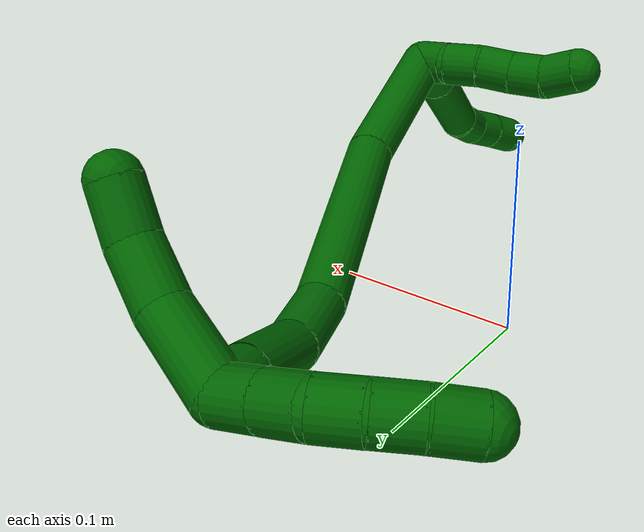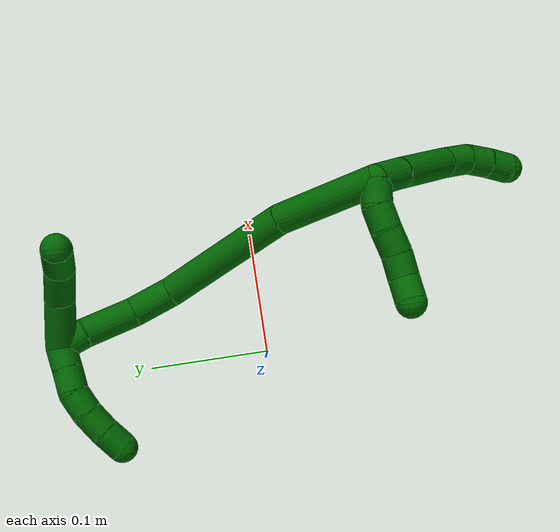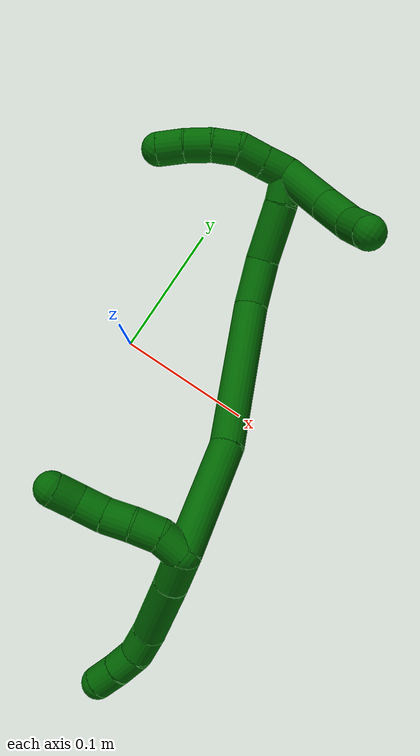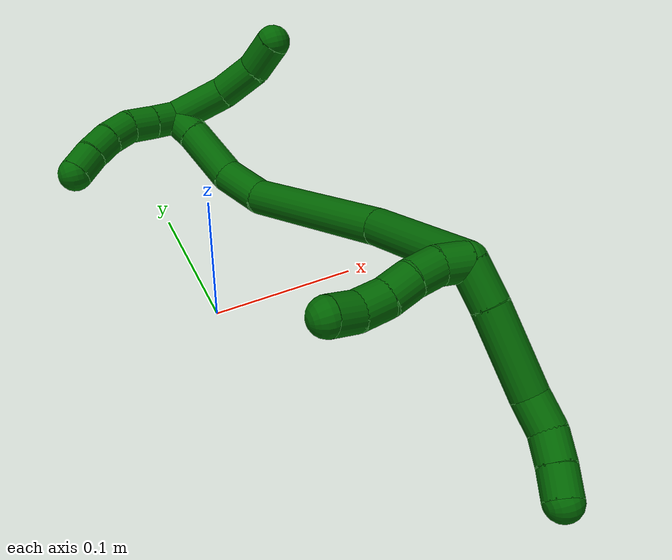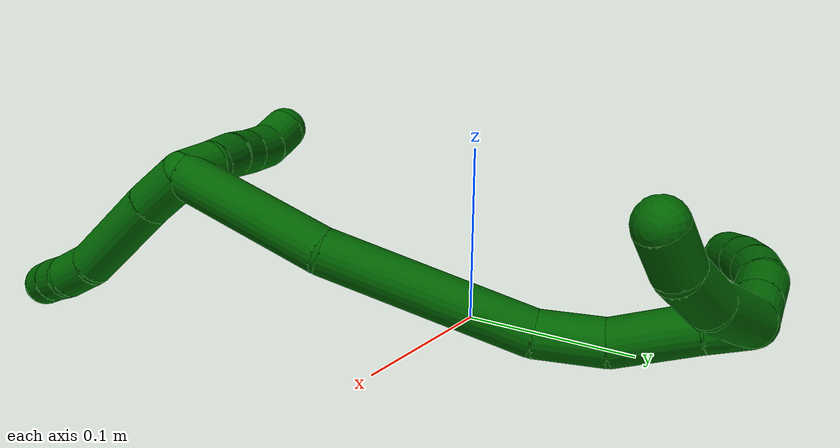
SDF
<sdf version="1.7">
 <world name="default">
  <model name="6">
   <static>0</static>
   <link name="6">
    <collision name="collision-cylinder-e_1_2_8">
     <pose>0.013653 -0.004264 0.002286 1.07871 1.23027 0.800234</pose>
     <geometry><cylinder><radius>0.0125</radius><length>0.02897</length></cylinder></geometry>
     <surface>
      <friction><ode><mu>1.16</mu><mu2>1.16</mu2><slip1>0</slip1><slip2>0</slip2></ode></friction>
      <contact><ode><kp>1e+06</kp><kd>1</kd><max_vel>0</max_vel><min_depth>0.001</min_depth></ode></contact>
     </surface>
    </collision>
    <visual name="visual-cylinder-e_1_2_8">
     <pose>0.013653 -0.004264 0.002286 1.07871 1.23027 0.800234</pose>
     <geometry><cylinder><radius>0.0125</radius><length>0.02897</length></cylinder></geometry>
     <material><ambient>0 0.392157 0.003922 1</ambient></material>
    </visual>
    <collision name="collision-cylinder-e_2_8_9">
     <pose>0.055135 -0.015543 0.008346 1.07715 1.29199 0.84646</pose>
     <geometry><cylinder><radius>0.0125</radius><length>0.057894</length></cylinder></geometry>
     <surface>
      <friction><ode><mu>1.16</mu><mu2>1.16</mu2><slip1>0</slip1><slip2>0</slip2></ode></friction>
      <contact><ode><kp>1e+06</kp><kd>1</kd><max_vel>0</max_vel><min_depth>0.001</min_depth></ode></contact>
     </surface>
    </collision>
    <visual name="visual-cylinder-e_2_8_9">
     <pose>0.055135 -0.015543 0.008346 1.07715 1.29199 0.84646</pose>
     <geometry><cylinder><radius>0.0125</radius><length>0.057894</length></cylinder></geometry>
     <material><ambient>0 0.392157 0.003922 1</ambient></material>
    </visual>
    <collision name="collision-cylinder-e_3_9_10">
     <pose>0.092927 -0.028155 0.012989 1.41686 1.05384 0.924853</pose>
     <geometry><cylinder><radius>0.0125</radius><length>0.022919</length></cylinder></geometry>
     <surface>
      <friction><ode><mu>1.16</mu><mu2>1.16</mu2><slip1>0</slip1><slip2>0</slip2></ode></friction>
      <contact><ode><kp>1e+06</kp><kd>1</kd><max_vel>0</max_vel><min_depth>0.001</min_depth></ode></contact>
     </surface>
    </collision>
    <visual name="visual-cylinder-e_3_9_10">
     <pose>0.092927 -0.028155 0.012989 1.41686 1.05384 0.924853</pose>
     <geometry><cylinder><radius>0.0125</radius><length>0.022919</length></cylinder></geometry>
     <material><ambient>0 0.392157 0.003922 1</ambient></material>
    </visual>
    <collision name="collision-cylinder-e_4_10_11">
     <pose>0.110728 -0.039552 0.011501 1.95671 0.896875 1.24118</pose>
     <geometry><cylinder><radius>0.0125</radius><length>0.020067</length></cylinder></geometry>
     <surface>
      <friction><ode><mu>1.16</mu><mu2>1.16</mu2><slip1>0</slip1><slip2>0</slip2></ode></friction>
      <contact><ode><kp>1e+06</kp><kd>1</kd><max_vel>0</max_vel><min_depth>0.001</min_depth></ode></contact>
     </surface>
    </collision>
    <visual name="visual-cylinder-e_4_10_11">
     <pose>0.110728 -0.039552 0.011501 1.95671 0.896875 1.24118</pose>
     <geometry><cylinder><radius>0.0125</radius><length>0.020067</length></cylinder></geometry>
     <material><ambient>0 0.392157 0.003922 1</ambient></material>
    </visual>
    <collision name="collision-cylinder-e_5_11_6">
     <pose>0.12655 -0.050746 0.006191 2.07174 0.914449 1.3859</pose>
     <geometry><cylinder><radius>0.0125</radius><length>0.020151</length></cylinder></geometry>
     <surface>
      <friction><ode><mu>1.16</mu><mu2>1.16</mu2><slip1>0</slip1><slip2>0</slip2></ode></friction>
      <contact><ode><kp>1e+06</kp><kd>1</kd><max_vel>0</max_vel><min_depth>0.001</min_depth></ode></contact>
     </surface>
    </collision>
    <visual name="visual-cylinder-e_5_11_6">
     <pose>0.12655 -0.050746 0.006191 2.07174 0.914449 1.3859</pose>
     <geometry><cylinder><radius>0.0125</radius><length>0.020151</length></cylinder></geometry>
     <material><ambient>0 0.392157 0.003922 1</ambient></material>
    </visual>
    <collision name="collision-cylinder-e_1_2_12">
     <pose>-0.0015 0.000181 -0.009885 -3.12332 -0.150557 2.90055</pose>
     <geometry><cylinder><radius>0.0125</radius><length>0.02</length></cylinder></geometry>
     <surface>
      <friction><ode><mu>1.16</mu><mu2>1.16</mu2><slip1>0</slip1><slip2>0</slip2></ode></friction>
      <contact><ode><kp>1e+06</kp><kd>1</kd><max_vel>0</max_vel><min_depth>0.001</min_depth></ode></contact>
     </surface>
    </collision>
    <visual name="visual-cylinder-e_1_2_12">
     <pose>-0.0015 0.000181 -0.009885 -3.12332 -0.150557 2.90055</pose>
     <geometry><cylinder><radius>0.0125</radius><length>0.02</length></cylinder></geometry>
     <material><ambient>0 0.392157 0.003922 1</ambient></material>
    </visual>
    <collision name="collision-cylinder-e_2_12_13">
     <pose>-0.002144 -0.001759 -0.029506 2.92719 0.085718 0.758432</pose>
     <geometry><cylinder><radius>0.0125</radius><length>0.02</length></cylinder></geometry>
     <surface>
      <friction><ode><mu>1.16</mu><mu2>1.16</mu2><slip1>0</slip1><slip2>0</slip2></ode></friction>
      <contact><ode><kp>1e+06</kp><kd>1</kd><max_vel>0</max_vel><min_depth>0.001</min_depth></ode></contact>
     </surface>
    </collision>
    <visual name="visual-cylinder-e_2_12_13">
     <pose>-0.002144 -0.001759 -0.029506 2.92719 0.085718 0.758432</pose>
     <geometry><cylinder><radius>0.0125</radius><length>0.02</length></cylinder></geometry>
     <material><ambient>0 0.392157 0.003922 1</ambient></material>
    </visual>
    <collision name="collision-cylinder-e_3_13_14">
     <pose>0.001142 -0.005747 -0.04876 2.94776 0.24539 1.80636</pose>
     <geometry><cylinder><radius>0.0125</radius><length>0.02</length></cylinder></geometry>
     <surface>
      <friction><ode><mu>1.16</mu><mu2>1.16</mu2><slip1>0</slip1><slip2>0</slip2></ode></friction>
      <contact><ode><kp>1e+06</kp><kd>1</kd><max_vel>0</max_vel><min_depth>0.001</min_depth></ode></contact>
     </surface>
    </collision>
    <visual name="visual-cylinder-e_3_13_14">
     <pose>0.001142 -0.005747 -0.04876 2.94776 0.24539 1.80636</pose>
     <geometry><cylinder><radius>0.0125</radius><length>0.02</length></cylinder></geometry>
     <material><ambient>0 0.392157 0.003922 1</ambient></material>
    </visual>
    <collision name="collision-cylinder-e_4_14_15">
     <pose>0.004287 -0.008936 -0.068165 3.00879 0.071659 0.988747</pose>
     <geometry><cylinder><radius>0.0125</radius><length>0.02</length></cylinder></geometry>
     <surface>
      <friction><ode><mu>1.16</mu><mu2>1.16</mu2><slip1>0</slip1><slip2>0</slip2></ode></friction>
      <contact><ode><kp>1e+06</kp><kd>1</kd><max_vel>0</max_vel><min_depth>0.001</min_depth></ode></contact>
     </surface>
    </collision>
    <visual name="visual-cylinder-e_4_14_15">
     <pose>0.004287 -0.008936 -0.068165 3.00879 0.071659 0.988747</pose>
     <geometry><cylinder><radius>0.0125</radius><length>0.02</length></cylinder></geometry>
     <material><ambient>0 0.392157 0.003922 1</ambient></material>
    </visual>
    <collision name="collision-cylinder-e_5_15_5">
     <pose>0.00287 -0.013091 -0.087401 2.84728 -0.215008 -1.25864</pose>
     <geometry><cylinder><radius>0.0125</radius><length>0.02</length></cylinder></geometry>
     <surface>
      <friction><ode><mu>1.16</mu><mu2>1.16</mu2><slip1>0</slip1><slip2>0</slip2></ode></friction>
      <contact><ode><kp>1e+06</kp><kd>1</kd><max_vel>0</max_vel><min_depth>0.001</min_depth></ode></contact>
     </surface>
    </collision>
    <visual name="visual-cylinder-e_5_15_5">
     <pose>0.00287 -0.013091 -0.087401 2.84728 -0.215008 -1.25864</pose>
     <geometry><cylinder><radius>0.0125</radius><length>0.02</length></cylinder></geometry>
     <material><ambient>0 0.392157 0.003922 1</ambient></material>
    </visual>
    <collision name="collision-cylinder-e_1_2_16">
     <pose>-0.00727 0.041264 -0.009037 -1.78641 -0.170427 0.211514</pose>
     <geometry><cylinder><radius>0.0125</radius><length>0.085726</length></cylinder></geometry>
     <surface>
      <friction><ode><mu>1.16</mu><mu2>1.16</mu2><slip1>0</slip1><slip2>0</slip2></ode></friction>
      <contact><ode><kp>1e+06</kp><kd>1</kd><max_vel>0</max_vel><min_depth>0.001</min_depth></ode></contact>
     </surface>
    </collision>
    <visual name="visual-cylinder-e_1_2_16">
     <pose>-0.00727 0.041264 -0.009037 -1.78641 -0.170427 0.211514</pose>
     <geometry><cylinder><radius>0.0125</radius><length>0.085726</length></cylinder></geometry>
     <material><ambient>0 0.392157 0.003922 1</ambient></material>
    </visual>
    <collision name="collision-cylinder-e_2_16_17">
     <pose>-0.025294 0.132807 -0.040561 -1.99135 -0.19283 0.296217</pose>
     <geometry><cylinder><radius>0.0125</radius><length>0.112236</length></cylinder></geometry>
     <surface>
      <friction><ode><mu>1.16</mu><mu2>1.16</mu2><slip1>0</slip1><slip2>0</slip2></ode></friction>
      <contact><ode><kp>1e+06</kp><kd>1</kd><max_vel>0</max_vel><min_depth>0.001</min_depth></ode></contact>
     </surface>
    </collision>
    <visual name="visual-cylinder-e_2_16_17">
     <pose>-0.025294 0.132807 -0.040561 -1.99135 -0.19283 0.296217</pose>
     <geometry><cylinder><radius>0.0125</radius><length>0.112236</length></cylinder></geometry>
     <material><ambient>0 0.392157 0.003922 1</ambient></material>
    </visual>
    <collision name="collision-cylinder-e_3_17_18">
     <pose>-0.04463 0.197563 -0.069449 -1.98708 -0.496784 0.742757</pose>
     <geometry><cylinder><radius>0.0125</radius><length>0.036013</length></cylinder></geometry>
     <surface>
      <friction><ode><mu>1.16</mu><mu2>1.16</mu2><slip1>0</slip1><slip2>0</slip2></ode></friction>
      <contact><ode><kp>1e+06</kp><kd>1</kd><max_vel>0</max_vel><min_depth>0.001</min_depth></ode></contact>
     </surface>
    </collision>
    <visual name="visual-cylinder-e_3_17_18">
     <pose>-0.04463 0.197563 -0.069449 -1.98708 -0.496784 0.742757</pose>
     <geometry><cylinder><radius>0.0125</radius><length>0.036013</length></cylinder></geometry>
     <material><ambient>0 0.392157 0.003922 1</ambient></material>
    </visual>
    <collision name="collision-cylinder-e_4_18_19">
     <pose>-0.069648 0.225541 -0.081787 -1.98516 -0.839473 1.19952</pose>
     <geometry><cylinder><radius>0.0125</radius><length>0.044167</length></cylinder></geometry>
     <surface>
      <friction><ode><mu>1.16</mu><mu2>1.16</mu2><slip1>0</slip1><slip2>0</slip2></ode></friction>
      <contact><ode><kp>1e+06</kp><kd>1</kd><max_vel>0</max_vel><min_depth>0.001</min_depth></ode></contact>
     </surface>
    </collision>
    <visual name="visual-cylinder-e_4_18_19">
     <pose>-0.069648 0.225541 -0.081787 -1.98516 -0.839473 1.19952</pose>
     <geometry><cylinder><radius>0.0125</radius><length>0.044167</length></cylinder></geometry>
     <material><ambient>0 0.392157 0.003922 1</ambient></material>
    </visual>
    <collision name="collision-cylinder-e_5_19_1">
     <pose>-0.093484 0.24603 -0.091708 -2.0888 -0.743749 1.18226</pose>
     <geometry><cylinder><radius>0.0125</radius><length>0.021859</length></cylinder></geometry>
     <surface>
      <friction><ode><mu>1.16</mu><mu2>1.16</mu2><slip1>0</slip1><slip2>0</slip2></ode></friction>
      <contact><ode><kp>1e+06</kp><kd>1</kd><max_vel>0</max_vel><min_depth>0.001</min_depth></ode></contact>
     </surface>
    </collision>
    <visual name="visual-cylinder-e_5_19_1">
     <pose>-0.093484 0.24603 -0.091708 -2.0888 -0.743749 1.18226</pose>
     <geometry><cylinder><radius>0.0125</radius><length>0.021859</length></cylinder></geometry>
     <material><ambient>0 0.392157 0.003922 1</ambient></material>
    </visual>
    <collision name="collision-cylinder-e_1_1_20">
     <pose>-0.101447 0.250501 -0.105352 2.88678 -0.056321 -0.432883</pose>
     <geometry><cylinder><radius>0.0125</radius><length>0.02</length></cylinder></geometry>
     <surface>
      <friction><ode><mu>1.16</mu><mu2>1.16</mu2><slip1>0</slip1><slip2>0</slip2></ode></friction>
      <contact><ode><kp>1e+06</kp><kd>1</kd><max_vel>0</max_vel><min_depth>0.001</min_depth></ode></contact>
     </surface>
    </collision>
    <visual name="visual-cylinder-e_1_1_20">
     <pose>-0.101447 0.250501 -0.105352 2.88678 -0.056321 -0.432883</pose>
     <geometry><cylinder><radius>0.0125</radius><length>0.02</length></cylinder></geometry>
     <material><ambient>0 0.392157 0.003922 1</ambient></material>
    </visual>
    <collision name="collision-cylinder-e_2_20_21">
     <pose>-0.102863 0.245489 -0.12466 2.88842 -0.085378 -0.647625</pose>
     <geometry><cylinder><radius>0.0125</radius><length>0.02</length></cylinder></geometry>
     <surface>
      <friction><ode><mu>1.16</mu><mu2>1.16</mu2><slip1>0</slip1><slip2>0</slip2></ode></friction>
      <contact><ode><kp>1e+06</kp><kd>1</kd><max_vel>0</max_vel><min_depth>0.001</min_depth></ode></contact>
     </surface>
    </collision>
    <visual name="visual-cylinder-e_2_20_21">
     <pose>-0.102863 0.245489 -0.12466 2.88842 -0.085378 -0.647625</pose>
     <geometry><cylinder><radius>0.0125</radius><length>0.02</length></cylinder></geometry>
     <material><ambient>0 0.392157 0.003922 1</ambient></material>
    </visual>
    <collision name="collision-cylinder-e_3_21_22">
     <pose>-0.101491 0.239059 -0.143226 2.72628 0.224281 0.981715</pose>
     <geometry><cylinder><radius>0.0125</radius><length>0.02</length></cylinder></geometry>
     <surface>
      <friction><ode><mu>1.16</mu><mu2>1.16</mu2><slip1>0</slip1><slip2>0</slip2></ode></friction>
      <contact><ode><kp>1e+06</kp><kd>1</kd><max_vel>0</max_vel><min_depth>0.001</min_depth></ode></contact>
     </surface>
    </collision>
    <visual name="visual-cylinder-e_3_21_22">
     <pose>-0.101491 0.239059 -0.143226 2.72628 0.224281 0.981715</pose>
     <geometry><cylinder><radius>0.0125</radius><length>0.02</length></cylinder></geometry>
     <material><ambient>0 0.392157 0.003922 1</ambient></material>
    </visual>
    <collision name="collision-cylinder-e_4_22_23">
     <pose>-0.095536 0.230753 -0.16033 2.65081 0.382346 1.31587</pose>
     <geometry><cylinder><radius>0.0125</radius><length>0.02</length></cylinder></geometry>
     <surface>
      <friction><ode><mu>1.16</mu><mu2>1.16</mu2><slip1>0</slip1><slip2>0</slip2></ode></friction>
      <contact><ode><kp>1e+06</kp><kd>1</kd><max_vel>0</max_vel><min_depth>0.001</min_depth></ode></contact>
     </surface>
    </collision>
    <visual name="visual-cylinder-e_4_22_23">
     <pose>-0.095536 0.230753 -0.16033 2.65081 0.382346 1.31587</pose>
     <geometry><cylinder><radius>0.0125</radius><length>0.02</length></cylinder></geometry>
     <material><ambient>0 0.392157 0.003922 1</ambient></material>
    </visual>
    <collision name="collision-cylinder-e_5_23_4">
     <pose>-0.08701 0.222091 -0.176169 2.63092 0.500071 1.54889</pose>
     <geometry><cylinder><radius>0.0125</radius><length>0.02</length></cylinder></geometry>
     <surface>
      <friction><ode><mu>1.16</mu><mu2>1.16</mu2><slip1>0</slip1><slip2>0</slip2></ode></friction>
      <contact><ode><kp>1e+06</kp><kd>1</kd><max_vel>0</max_vel><min_depth>0.001</min_depth></ode></contact>
     </surface>
    </collision>
    <visual name="visual-cylinder-e_5_23_4">
     <pose>-0.08701 0.222091 -0.176169 2.63092 0.500071 1.54889</pose>
     <geometry><cylinder><radius>0.0125</radius><length>0.02</length></cylinder></geometry>
     <material><ambient>0 0.392157 0.003922 1</ambient></material>
    </visual>
    <collision name="collision-cylinder-e_1_1_24">
     <pose>-0.10645 0.24464 -0.076939 0.420149 -0.264656 -0.056746</pose>
     <geometry><cylinder><radius>0.0125</radius><length>0.042557</length></cylinder></geometry>
     <surface>
      <friction><ode><mu>1.16</mu><mu2>1.16</mu2><slip1>0</slip1><slip2>0</slip2></ode></friction>
      <contact><ode><kp>1e+06</kp><kd>1</kd><max_vel>0</max_vel><min_depth>0.001</min_depth></ode></contact>
     </surface>
    </collision>
    <visual name="visual-cylinder-e_1_1_24">
     <pose>-0.10645 0.24464 -0.076939 0.420149 -0.264656 -0.056746</pose>
     <geometry><cylinder><radius>0.0125</radius><length>0.042557</length></cylinder></geometry>
     <material><ambient>0 0.392157 0.003922 1</ambient></material>
    </visual>
    <collision name="collision-cylinder-e_2_24_25">
     <pose>-0.118377 0.228251 -0.046698 0.608961 -0.426269 -0.135813</pose>
     <geometry><cylinder><radius>0.0125</radius><length>0.030767</length></cylinder></geometry>
     <surface>
      <friction><ode><mu>1.16</mu><mu2>1.16</mu2><slip1>0</slip1><slip2>0</slip2></ode></friction>
      <contact><ode><kp>1e+06</kp><kd>1</kd><max_vel>0</max_vel><min_depth>0.001</min_depth></ode></contact>
     </surface>
    </collision>
    <visual name="visual-cylinder-e_2_24_25">
     <pose>-0.118377 0.228251 -0.046698 0.608961 -0.426269 -0.135813</pose>
     <geometry><cylinder><radius>0.0125</radius><length>0.030767</length></cylinder></geometry>
     <material><ambient>0 0.392157 0.003922 1</ambient></material>
    </visual>
    <collision name="collision-cylinder-e_3_25_3">
     <pose>-0.133024 0.212428 -0.028265 0.844085 -0.67035 -0.310292</pose>
     <geometry><cylinder><radius>0.0125</radius><length>0.026676</length></cylinder></geometry>
     <surface>
      <friction><ode><mu>1.16</mu><mu2>1.16</mu2><slip1>0</slip1><slip2>0</slip2></ode></friction>
      <contact><ode><kp>1e+06</kp><kd>1</kd><max_vel>0</max_vel><min_depth>0.001</min_depth></ode></contact>
     </surface>
    </collision>
    <visual name="visual-cylinder-e_3_25_3">
     <pose>-0.133024 0.212428 -0.028265 0.844085 -0.67035 -0.310292</pose>
     <geometry><cylinder><radius>0.0125</radius><length>0.026676</length></cylinder></geometry>
     <material><ambient>0 0.392157 0.003922 1</ambient></material>
    </visual>
    <collision name="collision-sphere-3">
     <pose>-0.14131 0.204616 -0.021321 0 -0 0</pose>
     <geometry><sphere><radius>0.0125</radius></sphere></geometry>
     <surface>
      <friction><ode><mu>1.16</mu><mu2>1.16</mu2><slip1>0</slip1><slip2>0</slip2></ode></friction>
      <contact><ode><kp>1e+06</kp><kd>1</kd><max_vel>0</max_vel><min_depth>0.001</min_depth></ode></contact>
     </surface>
    </collision>
    <visual name="visual-sphere-3">
     <pose>-0.14131 0.204616 -0.021321 0 -0 0</pose>
     <geometry><sphere><radius>0.0125</radius></sphere></geometry>
     <material><ambient>0 0.392157 0.003922 1</ambient></material>
    </visual>
    <collision name="collision-sphere-25">
     <pose>-0.124737 0.220239 -0.035209 0 -0 0</pose>
     <geometry><sphere><radius>0.0125</radius></sphere></geometry>
     <surface>
      <friction><ode><mu>1.16</mu><mu2>1.16</mu2><slip1>0</slip1><slip2>0</slip2></ode></friction>
      <contact><ode><kp>1e+06</kp><kd>1</kd><max_vel>0</max_vel><min_depth>0.001</min_depth></ode></contact>
     </surface>
    </collision>
    <visual name="visual-sphere-25">
     <pose>-0.124737 0.220239 -0.035209 0 -0 0</pose>
     <geometry><sphere><radius>0.0125</radius></sphere></geometry>
     <material><ambient>0 0.392157 0.003922 1</ambient></material>
    </visual>
    <collision name="collision-sphere-24">
     <pose>-0.112016 0.236263 -0.058187 0 -0 0</pose>
     <geometry><sphere><radius>0.0125</radius></sphere></geometry>
     <surface>
      <friction><ode><mu>1.16</mu><mu2>1.16</mu2><slip1>0</slip1><slip2>0</slip2></ode></friction>
      <contact><ode><kp>1e+06</kp><kd>1</kd><max_vel>0</max_vel><min_depth>0.001</min_depth></ode></contact>
     </surface>
    </collision>
    <visual name="visual-sphere-24">
     <pose>-0.112016 0.236263 -0.058187 0 -0 0</pose>
     <geometry><sphere><radius>0.0125</radius></sphere></geometry>
     <material><ambient>0 0.392157 0.003922 1</ambient></material>
    </visual>
    <collision name="collision-sphere-4">
     <pose>-0.082215 0.217802 -0.183825 0 -0 0</pose>
     <geometry><sphere><radius>0.0125</radius></sphere></geometry>
     <surface>
      <friction><ode><mu>1.16</mu><mu2>1.16</mu2><slip1>0</slip1><slip2>0</slip2></ode></friction>
      <contact><ode><kp>1e+06</kp><kd>1</kd><max_vel>0</max_vel><min_depth>0.001</min_depth></ode></contact>
     </surface>
    </collision>
    <visual name="visual-sphere-4">
     <pose>-0.082215 0.217802 -0.183825 0 -0 0</pose>
     <geometry><sphere><radius>0.0125</radius></sphere></geometry>
     <material><ambient>0 0.392157 0.003922 1</ambient></material>
    </visual>
    <collision name="collision-sphere-23">
     <pose>-0.091805 0.22638 -0.168513 0 -0 0</pose>
     <geometry><sphere><radius>0.0125</radius></sphere></geometry>
     <surface>
      <friction><ode><mu>1.16</mu><mu2>1.16</mu2><slip1>0</slip1><slip2>0</slip2></ode></friction>
      <contact><ode><kp>1e+06</kp><kd>1</kd><max_vel>0</max_vel><min_depth>0.001</min_depth></ode></contact>
     </surface>
    </collision>
    <visual name="visual-sphere-23">
     <pose>-0.091805 0.22638 -0.168513 0 -0 0</pose>
     <geometry><sphere><radius>0.0125</radius></sphere></geometry>
     <material><ambient>0 0.392157 0.003922 1</ambient></material>
    </visual>
    <collision name="collision-sphere-22">
     <pose>-0.099267 0.235126 -0.152147 0 -0 0</pose>
     <geometry><sphere><radius>0.0125</radius></sphere></geometry>
     <surface>
      <friction><ode><mu>1.16</mu><mu2>1.16</mu2><slip1>0</slip1><slip2>0</slip2></ode></friction>
      <contact><ode><kp>1e+06</kp><kd>1</kd><max_vel>0</max_vel><min_depth>0.001</min_depth></ode></contact>
     </surface>
    </collision>
    <visual name="visual-sphere-22">
     <pose>-0.099267 0.235126 -0.152147 0 -0 0</pose>
     <geometry><sphere><radius>0.0125</radius></sphere></geometry>
     <material><ambient>0 0.392157 0.003922 1</ambient></material>
    </visual>
    <collision name="collision-sphere-21">
     <pose>-0.103715 0.242993 -0.134306 0 -0 0</pose>
     <geometry><sphere><radius>0.0125</radius></sphere></geometry>
     <surface>
      <friction><ode><mu>1.16</mu><mu2>1.16</mu2><slip1>0</slip1><slip2>0</slip2></ode></friction>
      <contact><ode><kp>1e+06</kp><kd>1</kd><max_vel>0</max_vel><min_depth>0.001</min_depth></ode></contact>
     </surface>
    </collision>
    <visual name="visual-sphere-21">
     <pose>-0.103715 0.242993 -0.134306 0 -0 0</pose>
     <geometry><sphere><radius>0.0125</radius></sphere></geometry>
     <material><ambient>0 0.392157 0.003922 1</ambient></material>
    </visual>
    <collision name="collision-sphere-20">
     <pose>-0.10201 0.247984 -0.115014 0 -0 0</pose>
     <geometry><sphere><radius>0.0125</radius></sphere></geometry>
     <surface>
      <friction><ode><mu>1.16</mu><mu2>1.16</mu2><slip1>0</slip1><slip2>0</slip2></ode></friction>
      <contact><ode><kp>1e+06</kp><kd>1</kd><max_vel>0</max_vel><min_depth>0.001</min_depth></ode></contact>
     </surface>
    </collision>
    <visual name="visual-sphere-20">
     <pose>-0.10201 0.247984 -0.115014 0 -0 0</pose>
     <geometry><sphere><radius>0.0125</radius></sphere></geometry>
     <material><ambient>0 0.392157 0.003922 1</ambient></material>
    </visual>
    <collision name="collision-sphere-6">
     <pose>0.134532 -0.056139 0.003239 0 -0 0</pose>
     <geometry><sphere><radius>0.0125</radius></sphere></geometry>
     <surface>
      <friction><ode><mu>1.16</mu><mu2>1.16</mu2><slip1>0</slip1><slip2>0</slip2></ode></friction>
      <contact><ode><kp>1e+06</kp><kd>1</kd><max_vel>0</max_vel><min_depth>0.001</min_depth></ode></contact>
     </surface>
    </collision>
    <visual name="visual-sphere-6">
     <pose>0.134532 -0.056139 0.003239 0 -0 0</pose>
     <geometry><sphere><radius>0.0125</radius></sphere></geometry>
     <material><ambient>0 0.392157 0.003922 1</ambient></material>
    </visual>
    <collision name="collision-sphere-11">
     <pose>0.118568 -0.045353 0.009144 0 -0 0</pose>
     <geometry><sphere><radius>0.0125</radius></sphere></geometry>
     <surface>
      <friction><ode><mu>1.16</mu><mu2>1.16</mu2><slip1>0</slip1><slip2>0</slip2></ode></friction>
      <contact><ode><kp>1e+06</kp><kd>1</kd><max_vel>0</max_vel><min_depth>0.001</min_depth></ode></contact>
     </surface>
    </collision>
    <visual name="visual-sphere-11">
     <pose>0.118568 -0.045353 0.009144 0 -0 0</pose>
     <geometry><sphere><radius>0.0125</radius></sphere></geometry>
     <material><ambient>0 0.392157 0.003922 1</ambient></material>
    </visual>
    <collision name="collision-sphere-10">
     <pose>0.102889 -0.033751 0.013858 0 -0 0</pose>
     <geometry><sphere><radius>0.0125</radius></sphere></geometry>
     <surface>
      <friction><ode><mu>1.16</mu><mu2>1.16</mu2><slip1>0</slip1><slip2>0</slip2></ode></friction>
      <contact><ode><kp>1e+06</kp><kd>1</kd><max_vel>0</max_vel><min_depth>0.001</min_depth></ode></contact>
     </surface>
    </collision>
    <visual name="visual-sphere-10">
     <pose>0.102889 -0.033751 0.013858 0 -0 0</pose>
     <geometry><sphere><radius>0.0125</radius></sphere></geometry>
     <material><ambient>0 0.392157 0.003922 1</ambient></material>
    </visual>
    <collision name="collision-sphere-9">
     <pose>0.082965 -0.022558 0.012121 0 -0 0</pose>
     <geometry><sphere><radius>0.0125</radius></sphere></geometry>
     <surface>
      <friction><ode><mu>1.16</mu><mu2>1.16</mu2><slip1>0</slip1><slip2>0</slip2></ode></friction>
      <contact><ode><kp>1e+06</kp><kd>1</kd><max_vel>0</max_vel><min_depth>0.001</min_depth></ode></contact>
     </surface>
    </collision>
    <visual name="visual-sphere-9">
     <pose>0.082965 -0.022558 0.012121 0 -0 0</pose>
     <geometry><sphere><radius>0.0125</radius></sphere></geometry>
     <material><ambient>0 0.392157 0.003922 1</ambient></material>
    </visual>
    <collision name="collision-sphere-2">
     <geometry><sphere><radius>0.0125</radius></sphere></geometry>
     <surface>
      <friction><ode><mu>1.16</mu><mu2>1.16</mu2><slip1>0</slip1><slip2>0</slip2></ode></friction>
      <contact><ode><kp>1e+06</kp><kd>1</kd><max_vel>0</max_vel><min_depth>0.001</min_depth></ode></contact>
     </surface>
    </collision>
    <visual name="visual-sphere-2">
     <geometry><sphere><radius>0.0125</radius></sphere></geometry>
     <material><ambient>0 0.392157 0.003922 1</ambient></material>
    </visual>
    <collision name="collision-sphere-19">
     <pose>-0.086085 0.239042 -0.087725 0 -0 0</pose>
     <geometry><sphere><radius>0.0125</radius></sphere></geometry>
     <surface>
      <friction><ode><mu>1.16</mu><mu2>1.16</mu2><slip1>0</slip1><slip2>0</slip2></ode></friction>
      <contact><ode><kp>1e+06</kp><kd>1</kd><max_vel>0</max_vel><min_depth>0.001</min_depth></ode></contact>
     </surface>
    </collision>
    <visual name="visual-sphere-19">
     <pose>-0.086085 0.239042 -0.087725 0 -0 0</pose>
     <geometry><sphere><radius>0.0125</radius></sphere></geometry>
     <material><ambient>0 0.392157 0.003922 1</ambient></material>
    </visual>
    <collision name="collision-sphere-8">
     <pose>0.027306 -0.008527 0.004571 0 -0 0</pose>
     <geometry><sphere><radius>0.0125</radius></sphere></geometry>
     <surface>
      <friction><ode><mu>1.16</mu><mu2>1.16</mu2><slip1>0</slip1><slip2>0</slip2></ode></friction>
      <contact><ode><kp>1e+06</kp><kd>1</kd><max_vel>0</max_vel><min_depth>0.001</min_depth></ode></contact>
     </surface>
    </collision>
    <visual name="visual-sphere-8">
     <pose>0.027306 -0.008527 0.004571 0 -0 0</pose>
     <geometry><sphere><radius>0.0125</radius></sphere></geometry>
     <material><ambient>0 0.392157 0.003922 1</ambient></material>
    </visual>
    <collision name="collision-sphere-12">
     <pose>-0.003 0.000361 -0.01977 0 -0 0</pose>
     <geometry><sphere><radius>0.0125</radius></sphere></geometry>
     <surface>
      <friction><ode><mu>1.16</mu><mu2>1.16</mu2><slip1>0</slip1><slip2>0</slip2></ode></friction>
      <contact><ode><kp>1e+06</kp><kd>1</kd><max_vel>0</max_vel><min_depth>0.001</min_depth></ode></contact>
     </surface>
    </collision>
    <visual name="visual-sphere-12">
     <pose>-0.003 0.000361 -0.01977 0 -0 0</pose>
     <geometry><sphere><radius>0.0125</radius></sphere></geometry>
     <material><ambient>0 0.392157 0.003922 1</ambient></material>
    </visual>
    <collision name="collision-sphere-13">
     <pose>-0.001288 -0.003879 -0.039241 0 -0 0</pose>
     <geometry><sphere><radius>0.0125</radius></sphere></geometry>
     <surface>
      <friction><ode><mu>1.16</mu><mu2>1.16</mu2><slip1>0</slip1><slip2>0</slip2></ode></friction>
      <contact><ode><kp>1e+06</kp><kd>1</kd><max_vel>0</max_vel><min_depth>0.001</min_depth></ode></contact>
     </surface>
    </collision>
    <visual name="visual-sphere-13">
     <pose>-0.001288 -0.003879 -0.039241 0 -0 0</pose>
     <geometry><sphere><radius>0.0125</radius></sphere></geometry>
     <material><ambient>0 0.392157 0.003922 1</ambient></material>
    </visual>
    <collision name="collision-sphere-14">
     <pose>0.003571 -0.007615 -0.058278 0 -0 0</pose>
     <geometry><sphere><radius>0.0125</radius></sphere></geometry>
     <surface>
      <friction><ode><mu>1.16</mu><mu2>1.16</mu2><slip1>0</slip1><slip2>0</slip2></ode></friction>
      <contact><ode><kp>1e+06</kp><kd>1</kd><max_vel>0</max_vel><min_depth>0.001</min_depth></ode></contact>
     </surface>
    </collision>
    <visual name="visual-sphere-14">
     <pose>0.003571 -0.007615 -0.058278 0 -0 0</pose>
     <geometry><sphere><radius>0.0125</radius></sphere></geometry>
     <material><ambient>0 0.392157 0.003922 1</ambient></material>
    </visual>
    <collision name="collision-sphere-15">
     <pose>0.005003 -0.010257 -0.078051 0 -0 0</pose>
     <geometry><sphere><radius>0.0125</radius></sphere></geometry>
     <surface>
      <friction><ode><mu>1.16</mu><mu2>1.16</mu2><slip1>0</slip1><slip2>0</slip2></ode></friction>
      <contact><ode><kp>1e+06</kp><kd>1</kd><max_vel>0</max_vel><min_depth>0.001</min_depth></ode></contact>
     </surface>
    </collision>
    <visual name="visual-sphere-15">
     <pose>0.005003 -0.010257 -0.078051 0 -0 0</pose>
     <geometry><sphere><radius>0.0125</radius></sphere></geometry>
     <material><ambient>0 0.392157 0.003922 1</ambient></material>
    </visual>
    <collision name="collision-sphere-5">
     <pose>0.000736 -0.015925 -0.096751 0 -0 0</pose>
     <geometry><sphere><radius>0.0125</radius></sphere></geometry>
     <surface>
      <friction><ode><mu>1.16</mu><mu2>1.16</mu2><slip1>0</slip1><slip2>0</slip2></ode></friction>
      <contact><ode><kp>1e+06</kp><kd>1</kd><max_vel>0</max_vel><min_depth>0.001</min_depth></ode></contact>
     </surface>
    </collision>
    <visual name="visual-sphere-5">
     <pose>0.000736 -0.015925 -0.096751 0 -0 0</pose>
     <geometry><sphere><radius>0.0125</radius></sphere></geometry>
     <material><ambient>0 0.392157 0.003922 1</ambient></material>
    </visual>
    <collision name="collision-sphere-16">
     <pose>-0.014539 0.082528 -0.018075 0 -0 0</pose>
     <geometry><sphere><radius>0.0125</radius></sphere></geometry>
     <surface>
      <friction><ode><mu>1.16</mu><mu2>1.16</mu2><slip1>0</slip1><slip2>0</slip2></ode></friction>
      <contact><ode><kp>1e+06</kp><kd>1</kd><max_vel>0</max_vel><min_depth>0.001</min_depth></ode></contact>
     </surface>
    </collision>
    <visual name="visual-sphere-16">
     <pose>-0.014539 0.082528 -0.018075 0 -0 0</pose>
     <geometry><sphere><radius>0.0125</radius></sphere></geometry>
     <material><ambient>0 0.392157 0.003922 1</ambient></material>
    </visual>
    <collision name="collision-sphere-17">
     <pose>-0.036048 0.183085 -0.063047 0 -0 0</pose>
     <geometry><sphere><radius>0.0125</radius></sphere></geometry>
     <surface>
      <friction><ode><mu>1.16</mu><mu2>1.16</mu2><slip1>0</slip1><slip2>0</slip2></ode></friction>
      <contact><ode><kp>1e+06</kp><kd>1</kd><max_vel>0</max_vel><min_depth>0.001</min_depth></ode></contact>
     </surface>
    </collision>
    <visual name="visual-sphere-17">
     <pose>-0.036048 0.183085 -0.063047 0 -0 0</pose>
     <geometry><sphere><radius>0.0125</radius></sphere></geometry>
     <material><ambient>0 0.392157 0.003922 1</ambient></material>
    </visual>
    <collision name="collision-sphere-18">
     <pose>-0.053212 0.212041 -0.07585 0 -0 0</pose>
     <geometry><sphere><radius>0.0125</radius></sphere></geometry>
     <surface>
      <friction><ode><mu>1.16</mu><mu2>1.16</mu2><slip1>0</slip1><slip2>0</slip2></ode></friction>
      <contact><ode><kp>1e+06</kp><kd>1</kd><max_vel>0</max_vel><min_depth>0.001</min_depth></ode></contact>
     </surface>
    </collision>
    <visual name="visual-sphere-18">
     <pose>-0.053212 0.212041 -0.07585 0 -0 0</pose>
     <geometry><sphere><radius>0.0125</radius></sphere></geometry>
     <material><ambient>0 0.392157 0.003922 1</ambient></material>
    </visual>
    <collision name="collision-sphere-1">
     <pose>-0.100884 0.253018 -0.09569 0 -0 0</pose>
     <geometry><sphere><radius>0.0125</radius></sphere></geometry>
     <surface>
      <friction><ode><mu>1.16</mu><mu2>1.16</mu2><slip1>0</slip1><slip2>0</slip2></ode></friction>
      <contact><ode><kp>1e+06</kp><kd>1</kd><max_vel>0</max_vel><min_depth>0.001</min_depth></ode></contact>
     </surface>
    </collision>
    <visual name="visual-sphere-1">
     <pose>-0.100884 0.253018 -0.09569 0 -0 0</pose>
     <geometry><sphere><radius>0.0125</radius></sphere></geometry>
     <material><ambient>0 0.392157 0.003922 1</ambient></material>
    </visual>
    <inertial>
     <pose>-0.028126 0.111578 -0.049035 0 -0 0</pose>
     <mass>0.75</mass>
     <inertia>
      <ixx>0.000265</ixx>
      <ixy>0</ixy>
      <ixz>0</ixz>
      <iyy>6.1e-05</iyy>
      <iyz>0</iyz>
      <izz>-0.000149</izz>
     </inertia>
    </inertial>
   </link>
   <pose>0.122094 -0.104278 0.094897 -1.56284 1.00463 -1.5816</pose>
  </model>
 </world>
</sdf>
